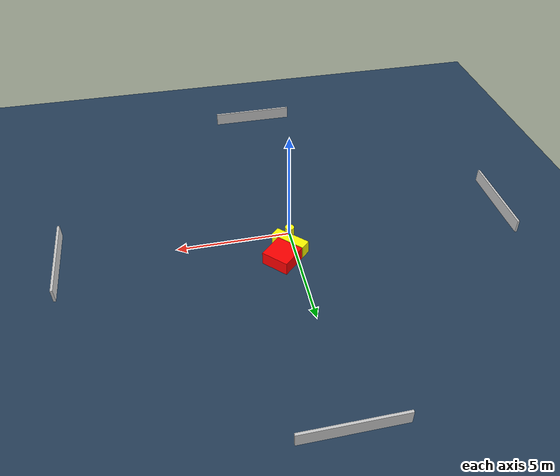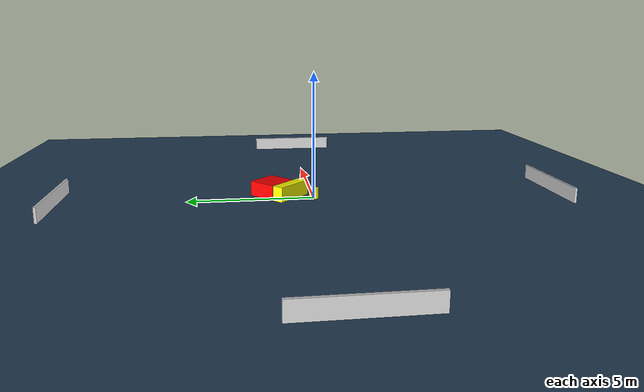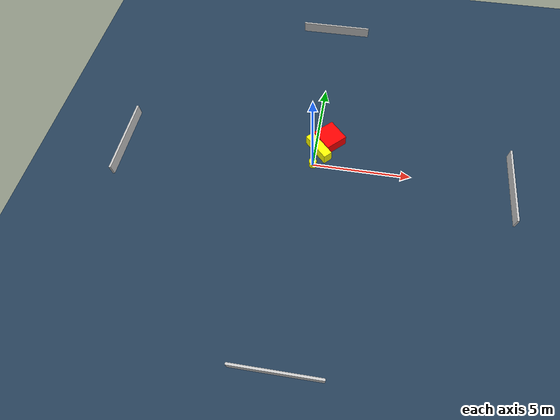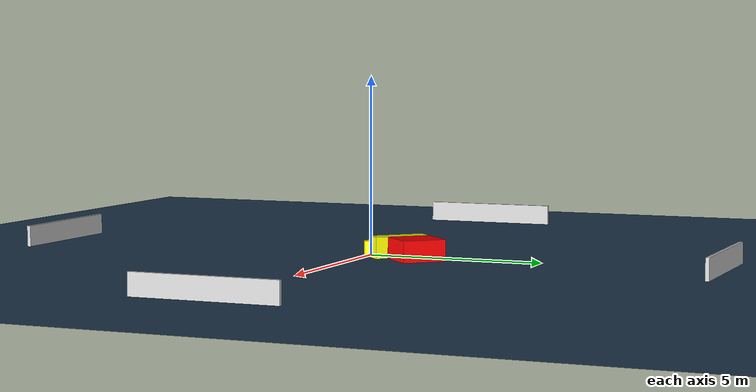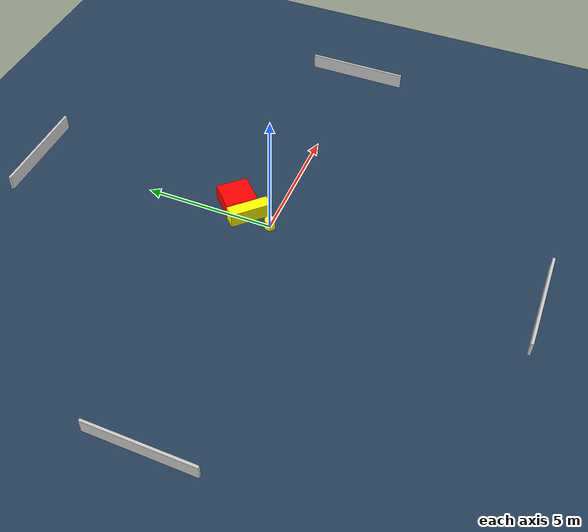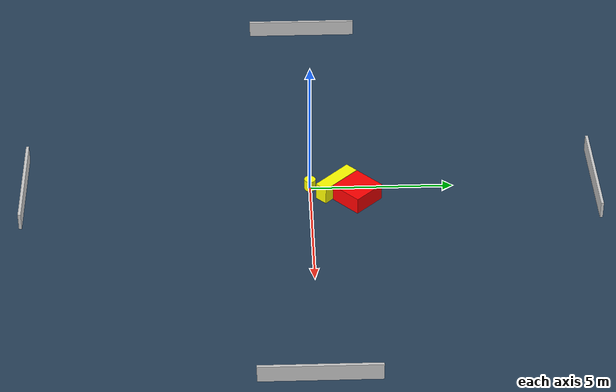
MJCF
<?xml version="1.0" ?>
<mujoco model="generated_environment">
  <option timestep="0.01" integrator="RK4" cone="elliptic"/>
  <default>
    <geom density="1"/>
  </default>
  <asset>
    <texture builtin="gradient" height="3072" name="skybox" rgb1="0.3 0.5 0.7" rgb2="0 0 0" type="skybox" width="512"/>
    <texture builtin="checker" height="300" name="groundplane" rgb1="0.2 0.3 0.4" rgb2="0.1 0.2 0.3" type="2d" width="300"/>
    <material name="groundplane" reflectance="0.2" texrepeat="5 5" texture="groundplane"/>
  </asset>
  <worldbody>
    <light dir="0 0 -1" directional="true" pos="0 0 1.5"/>
    <geom condim="3" friction="0.5 0.005 0.001" material="groundplane" name="floor" pos="0 0 0" size="0 0 0.05" type="plane"/>
    <body name="walls">
      <geom name="wall_1" condim="4" pos="-10.0 0.0 0.3" rgba="0.800000011920929 0.800000011920929 0.800000011920929 1.0" size="0.05 2.0 0.3" type="box"/>
      <geom name="wall_2" condim="4" pos="10.0 0.0 0.3" rgba="0.800000011920929 0.800000011920929 0.800000011920929 1.0" size="0.05 2.0 0.3" type="box"/>
      <geom name="wall_3" condim="4" pos="0.0 -10.0 0.3" rgba="0.800000011920929 0.800000011920929 0.800000011920929 1.0" size="2.0 0.05 0.3" type="box"/>
      <geom name="wall_4" condim="4" pos="0.0 10.0 0.3" rgba="0.800000011920929 0.800000011920929 0.800000011920929 1.0" size="2.0 0.05 0.3" type="box"/>
    </body>
    <body name="robot">
      <joint name="joint_x" type="slide" pos="0 0 0" axis="1 0 0"/>
      <joint name="joint_y" type="slide" pos="0 0 0" axis="0 1 0"/>
      <geom name="robot" type="cylinder" pos="0.0 0.0 0.2" size="0.2 0.2 0.0" mass="5.0" friction="1.0 0.005 0.0001" condim="4" rgba="1.0 1.0 0.0 1.0"/>
    </body>
    <body name="obstacle_1_movable">
      <geom name="obstacle_1_movable" condim="4" pos="0.17305253570905602 0.91967515131069 0.3" euler="0 0 314.74275481889293" friction="0.0 0.005 0.001" rgba="1.0 1.0 0.0 1.0" size="0.792585292626746 0.23580790070669033 0.3" type="box" mass="0.1"/>
      <joint type="free"/>
    </body>
    <body name="obstacle_2_static">
      <geom name="obstacle_2_static" condim="4" pos="0.6631447272523814 1.6325529392098181 0.3" euler="0 0 223.9498049090303" friction="0.0 0.005 0.001" rgba="1.0 0.0 0.0 1.0" size="0.5891710572443007 0.6143858146979733 0.3" type="box"/>
    </body>
  </worldbody>
  <actuator>
    <motor name="actuator_x" joint="joint_x" gear="1" ctrlrange="-1 1"/>
    <motor name="actuator_y" joint="joint_y" gear="1" ctrlrange="-1 1"/>
  </actuator>
</mujoco>
